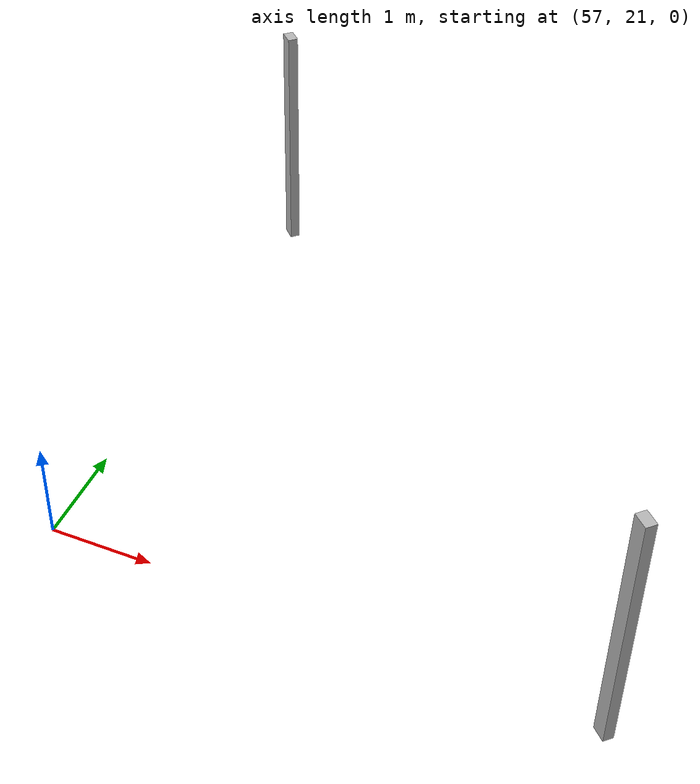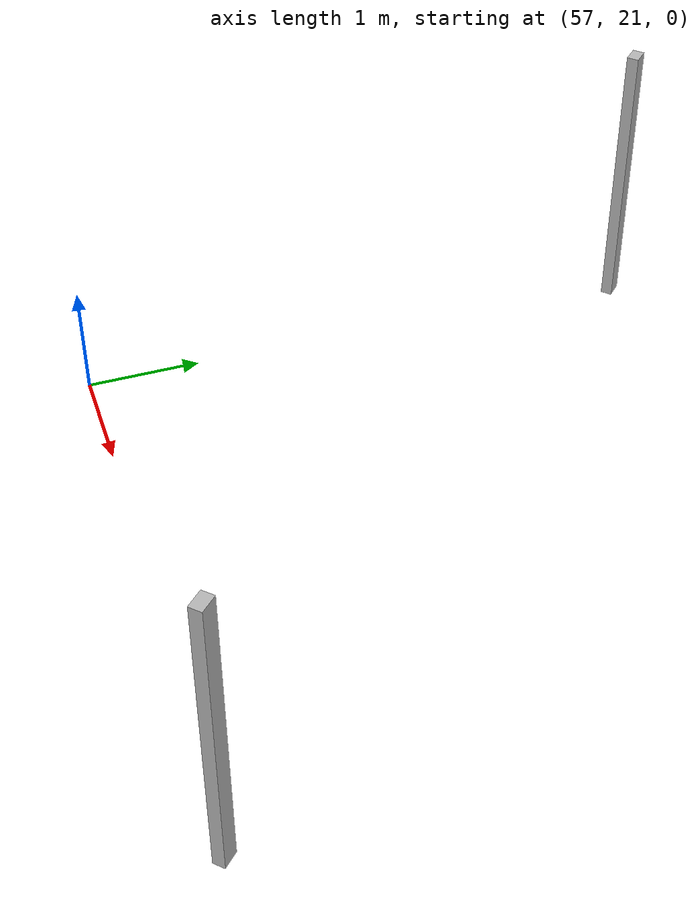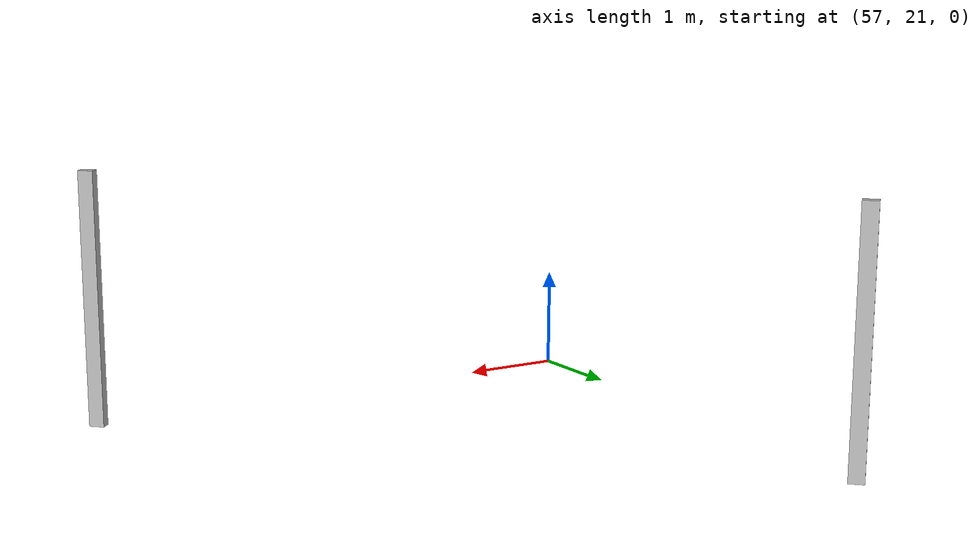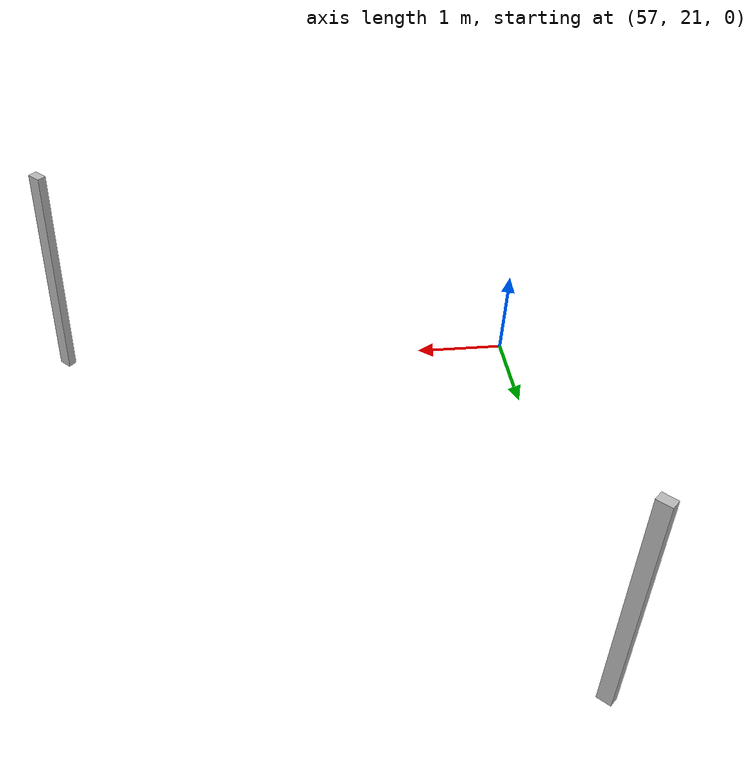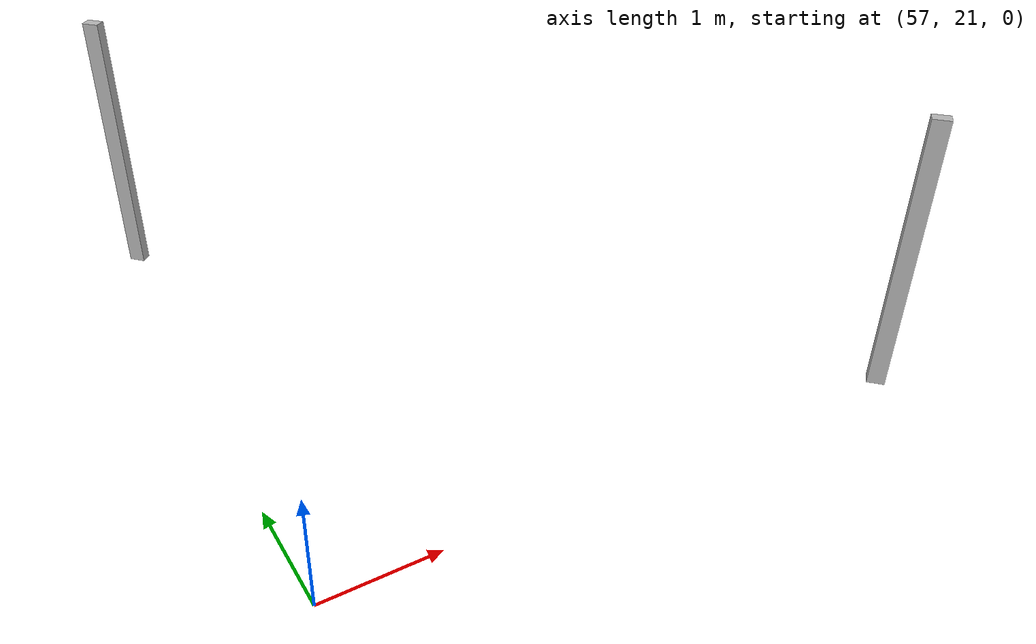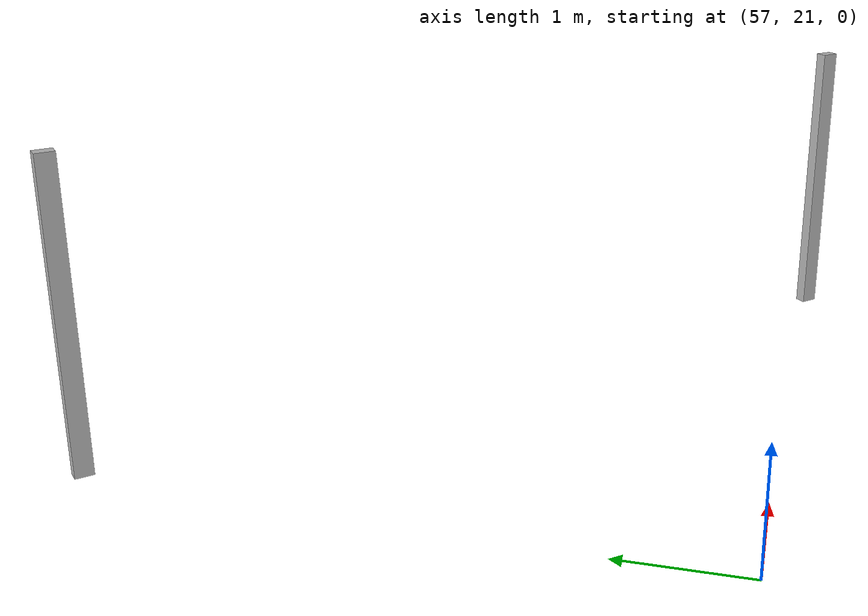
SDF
<?xml version="1.0" ?>
<sdf version="1.6">
  <model name="sps_1224">
    <pose frame="">0 0 0 0 -0 0</pose>
    <static>1</static>
    <self_collide>0</self_collide>
    <allow_auto_disable>0</allow_auto_disable>
    <link name="Wall142">
      <kinematic>0</kinematic>
      <gravity>1</gravity>
      <self_collide>0</self_collide>
      <collision name="collision">
        <geometry>
          <box>
            <size>0.100699 0.15 2.5</size>
          </box>
        </geometry>
        <pose frame="">0 0 0 0 -0 0</pose>
      </collision>
      <visual name="visual">
        <geometry>
          <box>
            <size>0.100699 0.15 2.5</size>
          </box>
        </geometry>
        <pose frame="">0 0 0 0 -0 0</pose>
        <cast_shadows>1</cast_shadows>
        <transparency>0.0</transparency>
      </visual>
      <pose frame="">57.1653 26.0108 1.25 0 -0 0.771254</pose>
    </link>
    <link name="Wall380">
      <kinematic>0</kinematic>
      <gravity>1</gravity>
      <self_collide>0</self_collide>
      <collision name="collision">
        <geometry>
          <box>
            <size>0.10069 0.15 2.5</size>
          </box>
        </geometry>
        <pose frame="">0 0 0 0 -0 0</pose>
      </collision>
      <visual name="visual">
        <geometry>
          <box>
            <size>0.10069 0.15 2.5</size>
          </box>
        </geometry>
        <pose frame="">0 0 0 0 -0 0</pose>
        <cast_shadows>1</cast_shadows>
        <transparency>0.0</transparency>
      </visual>
      <pose frame="">62.1836 20.8477 1.25 0 0 -2.36177</pose>
    </link>
  </model>
</sdf>
